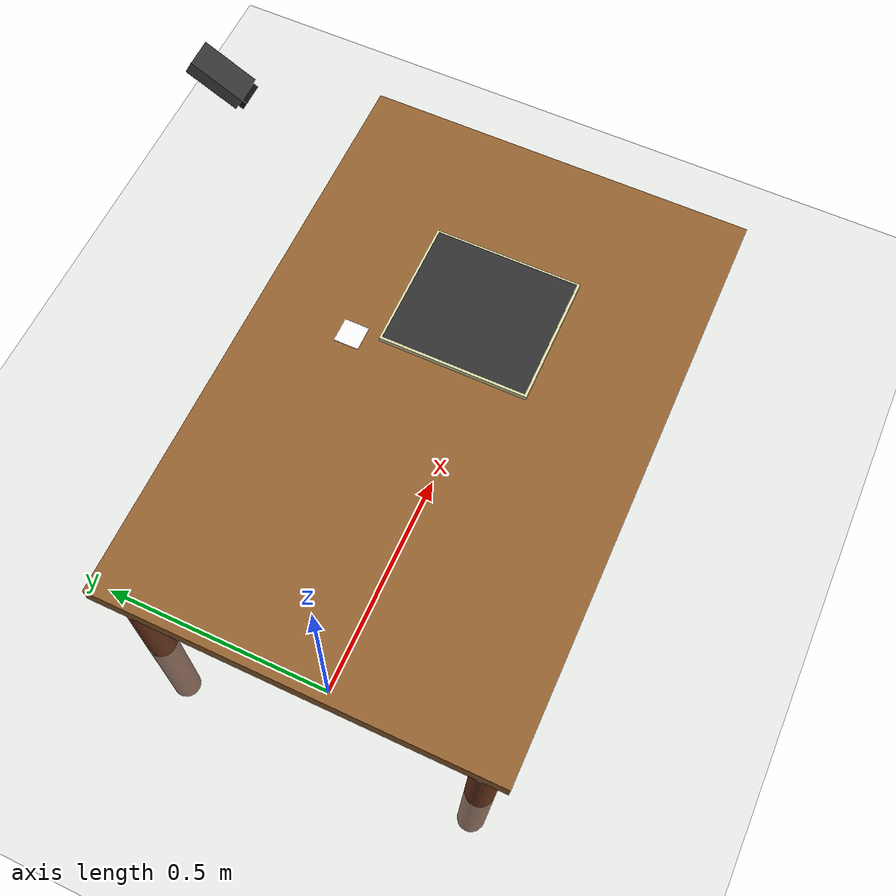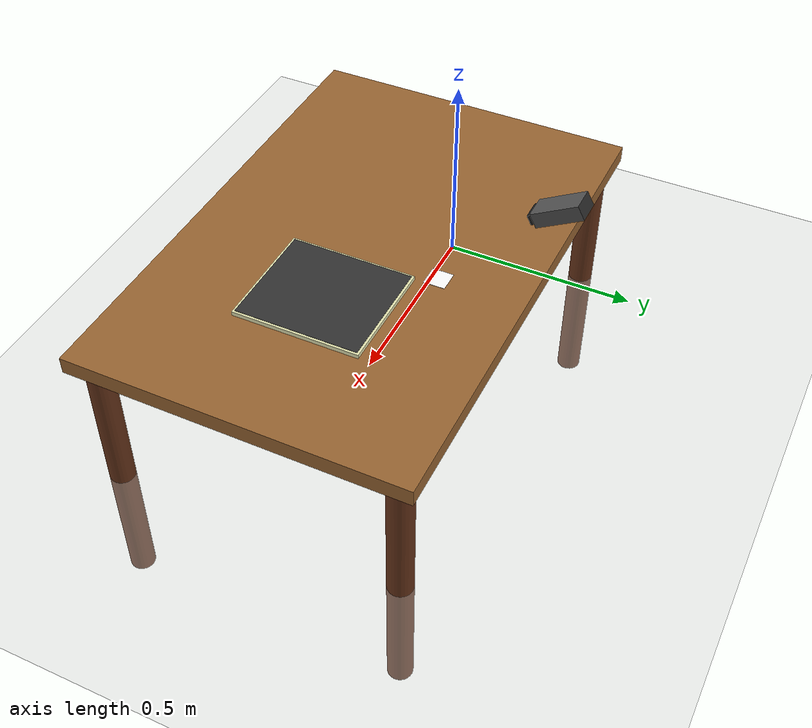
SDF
<?xml version="1.0" ?>
<sdf version="1.7">
  <world name="chess_world">

    <!-- 物理引擎设置 -->
    <physics name="default_physics" default="0" type="ode">
      <max_step_size>0.001</max_step_size>
      <real_time_factor>1.0</real_time_factor>
      <real_time_update_rate>1000</real_time_update_rate>
    </physics>

    <!-- 重力 -->
    <gravity>0.0 0.0 -9.81</gravity>

    <!-- 磁场 -->
    <magnetic_field>6e-06 2.3e-05 -4.2e-05</magnetic_field>

    <!-- 大气模型 -->
    <atmosphere type="adiabatic"/>

    <!-- 场景设置 -->
    <scene>
      <ambient>0.4 0.4 0.4 1</ambient>
      <background>0.7 0.7 0.7 1</background>
      <shadows>true</shadows>
    </scene>

    <!-- 光照 -->
    <light type="directional" name="sun">
      <cast_shadows>true</cast_shadows>
      <pose>0 0 10 0 0 0</pose>
      <diffuse>0.8 0.8 0.8 1</diffuse>
      <specular>0.2 0.2 0.2 1</specular>
      <attenuation>
        <range>1000</range>
        <constant>0.9</constant>
        <linear>0.01</linear>
        <quadratic>0.001</quadratic>
      </attenuation>
      <direction>-0.5 0.1 -0.9</direction>
    </light>

    <!-- 额外的方向光作为环境光补充 -->
    <light type="directional" name="ambient_light">
      <cast_shadows>false</cast_shadows>
      <pose>0 0 10 0 0 0</pose>
      <diffuse>0.3 0.3 0.3 1</diffuse>
      <specular>0.0 0.0 0.0 1</specular>
      <direction>0 0 -1</direction>
    </light>

    <!-- 地面 -->
    <model name="ground_plane">
      <static>true</static>
      <link name="link">
        <collision name="collision">
          <geometry>
            <plane>
              <normal>0 0 1</normal>
              <size>100 100</size>
            </plane>
          </geometry>
        </collision>
        <visual name="visual">
          <geometry>
            <plane>
              <normal>0 0 1</normal>
              <size>100 100</size>
            </plane>
          </geometry>
          <material>
            <ambient>0.8 0.8 0.8 1</ambient>
            <diffuse>0.8 0.8 0.8 1</diffuse>
            <specular>0.0 0.0 0.0 1</specular>
          </material>
        </visual>
      </link>
    </model>

    <!-- 桌子 -->
    <model name="table">
      <static>true</static>
      <pose>0.5 0 0.37 0 0 0</pose>
      <link name="table_top">
        <collision name="collision">
          <geometry>
            <box>
              <size>1.2 0.8 0.04</size>
            </box>
          </geometry>
        </collision>
        <visual name="visual">
          <geometry>
            <box>
              <size>1.2 0.8 0.04</size>
            </box>
          </geometry>
          <material>
            <ambient>0.6 0.4 0.2 1</ambient>
            <diffuse>0.6 0.4 0.2 1</diffuse>
          </material>
        </visual>
        <inertial>
          <mass>10.0</mass>
          <inertia>
            <ixx>0.4</ixx>
            <iyy>0.6</iyy>
            <izz>1.0</izz>
          </inertia>
        </inertial>
      </link>

      <!-- 桌腿 -->
      <link name="leg1">
        <pose>0.55 0.35 -0.35 0 0 0</pose>
        <collision name="collision">
          <geometry>
            <cylinder>
              <radius>0.03</radius>
              <length>0.7</length>
            </cylinder>
          </geometry>
        </collision>
        <visual name="visual">
          <geometry>
            <cylinder>
              <radius>0.03</radius>
              <length>0.7</length>
            </cylinder>
          </geometry>
          <material>
            <ambient>0.4 0.2 0.1 1</ambient>
            <diffuse>0.4 0.2 0.1 1</diffuse>
          </material>
        </visual>
      </link>

      <link name="leg2">
        <pose>0.55 -0.35 -0.35 0 0 0</pose>
        <collision name="collision">
          <geometry>
            <cylinder>
              <radius>0.03</radius>
              <length>0.7</length>
            </cylinder>
          </geometry>
        </collision>
        <visual name="visual">
          <geometry>
            <cylinder>
              <radius>0.03</radius>
              <length>0.7</length>
            </cylinder>
          </geometry>
          <material>
            <ambient>0.4 0.2 0.1 1</ambient>
            <diffuse>0.4 0.2 0.1 1</diffuse>
          </material>
        </visual>
      </link>

      <link name="leg3">
        <pose>-0.55 0.35 -0.35 0 0 0</pose>
        <collision name="collision">
          <geometry>
            <cylinder>
              <radius>0.03</radius>
              <length>0.7</length>
            </cylinder>
          </geometry>
        </collision>
        <visual name="visual">
          <geometry>
            <cylinder>
              <radius>0.03</radius>
              <length>0.7</length>
            </cylinder>
          </geometry>
          <material>
            <ambient>0.4 0.2 0.1 1</ambient>
            <diffuse>0.4 0.2 0.1 1</diffuse>
          </material>
        </visual>
      </link>

      <link name="leg4">
        <pose>-0.55 -0.35 -0.35 0 0 0</pose>
        <collision name="collision">
          <geometry>
            <cylinder>
              <radius>0.03</radius>
              <length>0.7</length>
            </cylinder>
          </geometry>
        </collision>
        <visual name="visual">
          <geometry>
            <cylinder>
              <radius>0.03</radius>
              <length>0.7</length>
            </cylinder>
          </geometry>
          <material>
            <ambient>0.4 0.2 0.1 1</ambient>
            <diffuse>0.4 0.2 0.1 1</diffuse>
          </material>
        </visual>
      </link>

      <!-- 关节连接 -->
      <joint name="table_leg1_joint" type="fixed">
        <parent>table_top</parent>
        <child>leg1</child>
      </joint>
      <joint name="table_leg2_joint" type="fixed">
        <parent>table_top</parent>
        <child>leg2</child>
      </joint>
      <joint name="table_leg3_joint" type="fixed">
        <parent>table_top</parent>
        <child>leg3</child>
      </joint>
      <joint name="table_leg4_joint" type="fixed">
        <parent>table_top</parent>
        <child>leg4</child>
      </joint>
    </model>

    <!-- 象棋棋盘 -->
    <model name="chess_board">
      <static>true</static>
      <pose>0.7 0 0.395 0 0 0</pose>
      <link name="board">
        <collision name="collision">
          <geometry>
            <box>
              <size>0.27 0.30 0.01</size>
            </box>
          </geometry>
        </collision>
        <visual name="visual">
          <geometry>
            <box>
              <size>0.27 0.30 0.01</size>
            </box>
          </geometry>
          <material>
            <ambient>0.9 0.9 0.7 1</ambient>
            <diffuse>0.9 0.9 0.7 1</diffuse>
            <specular>0.1 0.1 0.1 1</specular>
          </material>
        </visual>
      </link>

      <!-- 棋盘线条（简化表示） -->
      <link name="board_lines">
        <pose>0 0 0.006 0 0 0</pose>
        <visual name="visual">
          <geometry>
            <box>
              <size>0.26 0.29 0.001</size>
            </box>
          </geometry>
          <material>
            <ambient>0.2 0.2 0.2 1</ambient>
            <diffuse>0.2 0.2 0.2 1</diffuse>
          </material>
        </visual>
      </link>

      <joint name="board_lines_joint" type="fixed">
        <parent>board</parent>
        <child>board_lines</child>
      </joint>
    </model>

    <!-- ArUco标记 -->
    <model name="aruco_marker">
      <static>true</static>
      <pose>0.55 0.2 0.401 0 0 0</pose>
      <link name="marker">
        <visual name="visual">
          <geometry>
            <box>
              <size>0.05 0.05 0.001</size>
            </box>
          </geometry>
          <material>
            <ambient>1 1 1 1</ambient>
            <diffuse>1 1 1 1</diffuse>
            <specular>0 0 0 1</specular>
          </material>
        </visual>
      </link>
    </model>

    <!-- 相机模拟支架 -->
    <model name="camera_mount">
      <static>true</static>
      <pose>0.7 0.5 0.8 0 0.5 -1.57</pose>
      <link name="mount">
        <visual name="visual">
          <geometry>
            <box>
              <size>0.1 0.05 0.03</size>
            </box>
          </geometry>
          <material>
            <ambient>0.3 0.3 0.3 1</ambient>
            <diffuse>0.3 0.3 0.3 1</diffuse>
          </material>
        </visual>
        <collision name="collision">
          <geometry>
            <box>
              <size>0.1 0.05 0.03</size>
            </box>
          </geometry>
        </collision>
      </link>

      <!-- 模拟RGB-D相机 -->
      <link name="camera_link">
        <pose>0.05 0 0 0 0 0</pose>
        <visual name="visual">
          <geometry>
            <box>
              <size>0.02 0.04 0.02</size>
            </box>
          </geometry>
          <material>
            <ambient>0.1 0.1 0.1 1</ambient>
            <diffuse>0.1 0.1 0.1 1</diffuse>
          </material>
        </visual>

        <!-- RGB相机传感器 -->
        <sensor name="rgb_camera" type="camera">
          <camera>
            <horizontal_fov>1.047</horizontal_fov>
            <image>
              <width>640</width>
              <height>480</height>
              <format>R8G8B8</format>
            </image>
            <clip>
              <near>0.1</near>
              <far>100</far>
            </clip>
          </camera>
          <always_on>1</always_on>
          <update_rate>30</update_rate>
          <visualize>true</visualize>
          <topic>camera/rgb/image_raw</topic>
        </sensor>

        <!-- 深度相机传感器 -->
        <sensor name="depth_camera" type="depth">
          <camera>
            <horizontal_fov>1.047</horizontal_fov>
            <image>
              <width>640</width>
              <height>480</height>
              <format>R_FLOAT32</format>
            </image>
            <clip>
              <near>0.1</near>
              <far>10</far>
            </clip>
          </camera>
          <always_on>1</always_on>
          <update_rate>30</update_rate>
          <visualize>false</visualize>
          <topic>camera/depth/image_raw</topic>
        </sensor>
      </link>

      <joint name="camera_joint" type="fixed">
        <parent>mount</parent>
        <child>camera_link</child>
      </joint>
    </model>

    <!-- GUI插件 -->
    <gui fullscreen="0">
      <camera name="user_camera">
        <pose>1.5 1.5 1.2 0 0.4 -2.3</pose>
        <view_controller>orbit</view_controller>
        <projection_type>perspective</projection_type>
      </camera>
    </gui>

  </world>
</sdf>
